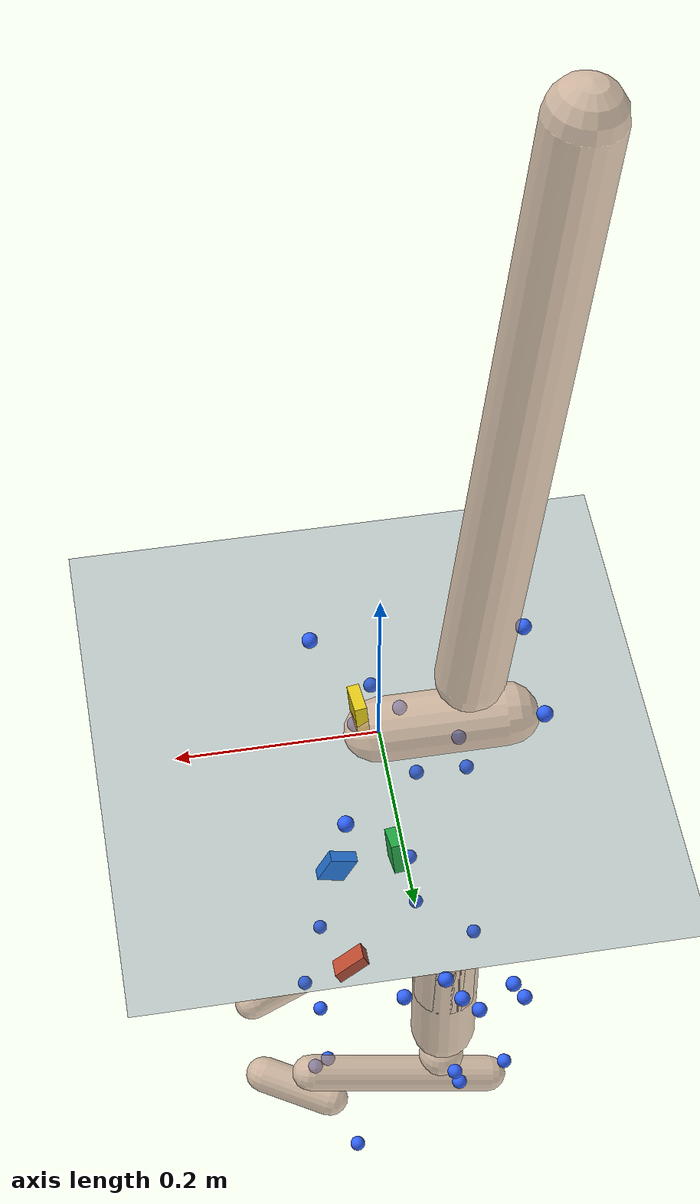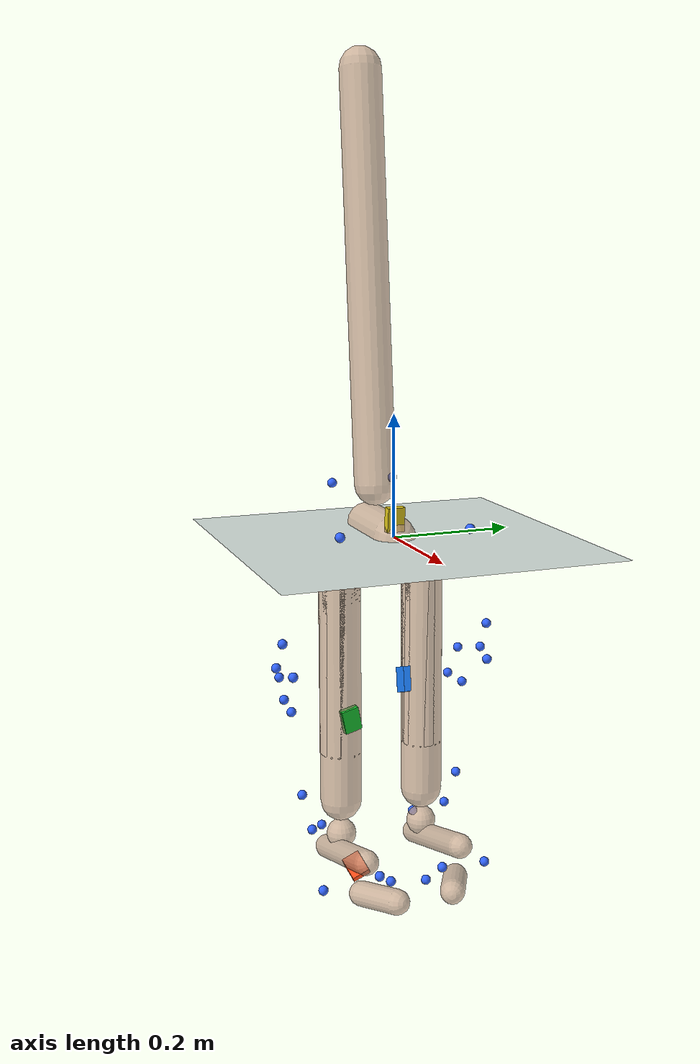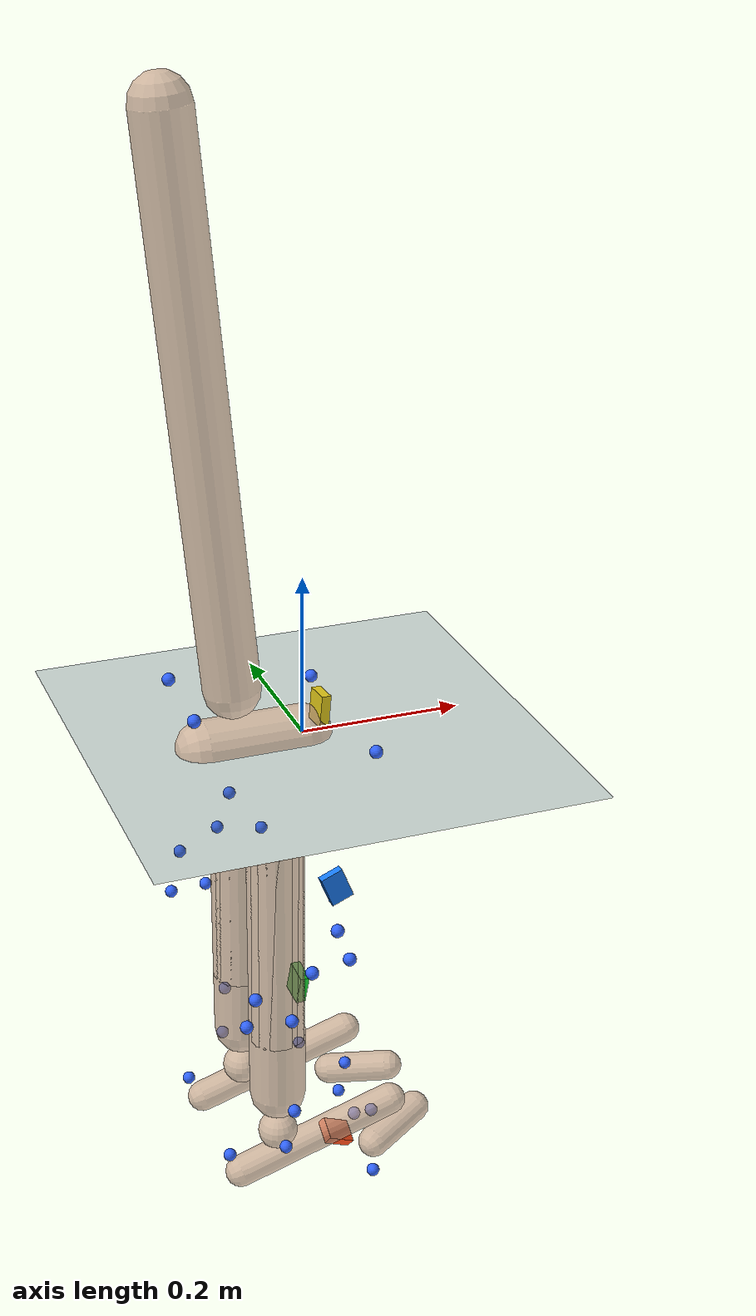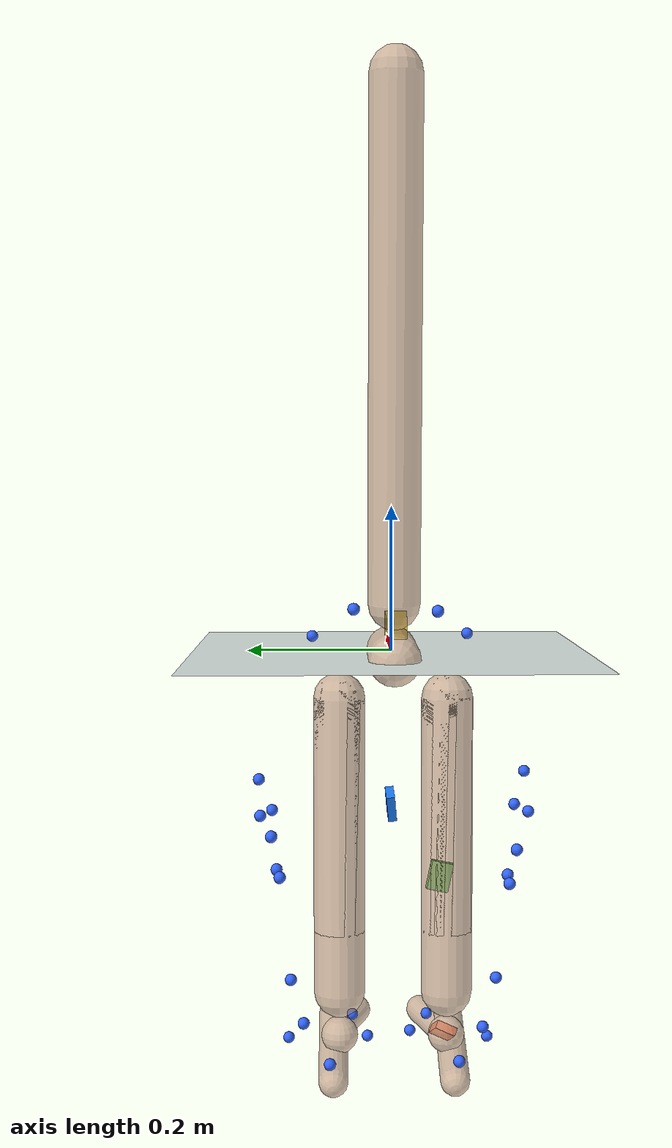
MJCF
<mujoco model="AB20">
  <compiler angle="radian" autolimits="true"/>
  <option timestep="0.005" gravity="0 0 -9.81"><flag contact="disable"/></option>
  <visual><global offwidth="1280" offheight="720"/></visual>
  <default><joint limited="false" damping="0"/><geom contype="0" conaffinity="0"/></default>
  <asset>
    <texture name="grid" type="2d" builtin="checker" rgb1="0.2 0.3 0.4" rgb2="0.3 0.4 0.5" width="512" height="512"/>
    <material name="grid" texture="grid" texrepeat="2 2" texuniform="true"/>
    <material name="skin" rgba="0.8 0.65 0.55 0.7"/>
  </asset>
  <worldbody>
    <light pos="0 0 4" dir="0 0 -1"/>
    <geom name="floor" type="plane" size="0 0 0.05" material="grid"/>
    <body name="pelvis" pos="0 0 0" quat="1 0 0 0">
      <joint name="pelvis_tx" type="slide" axis="1 0 0"/>
      <joint name="pelvis_ty" type="slide" axis="0 0 1"/>
      <joint name="pelvis_tz" type="slide" axis="0 -1 0"/>
      <joint name="pelvis_tilt" type="hinge" axis="0 -1 0"/>
      <joint name="pelvis_list" type="hinge" axis="1 0 0"/>
      <joint name="pelvis_rotation" type="hinge" axis="0 0 1"/>
      <inertial pos="-0.062069295 0 0" mass="10.7342" diaginertia="0.10734209 0.10734209 0.10734209"/>
      <geom type="capsule" fromto="0 0 0 -0.12413859 0 0" size="0.035" material="skin" mass="0"/>
      <site name="m_R_ASIS" pos="0.051108366 -0.10978101 0.018015081" size="0.008" rgba="0.2 0.4 1 1" group="2"/>
      <site name="m_L_ASIS" pos="0.050746581 0.11137873 0.01492082" size="0.008" rgba="0.2 0.4 1 1" group="2"/>
      <site name="m_L_PSIS" pos="-0.14970844 0.054369327 0.069853841" size="0.008" rgba="0.2 0.4 1 1" group="2"/>
      <site name="m_R_PSIS" pos="-0.15140817 -0.054568523 0.0671458" size="0.008" rgba="0.2 0.4 1 1" group="2"/>
      <body name="femur_r" pos="-0.062069295 -0.073306735 -0.058030841" quat="1 0 0 0">
        <joint name="hip_flexion_r" type="hinge" axis="0 -1 0"/>
        <joint name="hip_adduction_r" type="hinge" axis="1 0 0"/>
        <joint name="hip_rotation_r" type="hinge" axis="0 0 1"/>
        <inertial pos="0 0 -0.15976041" mass="8.47781" diaginertia="0.084778101 0.084778101 0.084778101"/>
        <geom type="capsule" fromto="0 0 0 0 0 -0.31952082" size="0.035" material="skin" mass="0"/>
        <site name="m_R_Thigh_Upper" pos="0.038305952 -0.1101171 -0.10849112" size="0.008" rgba="0.2 0.4 1 1" group="2"/>
        <site name="m_R_Thigh_Front" pos="0.058063562 -0.098980911 -0.15935557" size="0.008" rgba="0.2 0.4 1 1" group="2"/>
        <site name="m_R_Thigh_Rear" pos="0.0061621237 -0.11218336 -0.15828189" size="0.008" rgba="0.2 0.4 1 1" group="2"/>
        <site name="m_R_Knee_Lat" pos="-0.0013760862 -0.068321766 -0.38789228" size="0.008" rgba="0.2 0.4 1 1" group="2"/>
        <site name="imu_thigh" type="box" size="0.02 0.015 0.006" pos="0.10504702 0.072766358 -0.16855123" quat="0.41588795 0.38483018 -0.54996524 0.61358062" rgba="0.1 0.5 1 1" group="1"/>
        <body name="tibia_r" pos="0 0 0" quat="1 0 0 0">
          <joint name="knee_r_translation1" type="slide" axis="1 0 0"/>
          <joint name="knee_r_translation2" type="slide" axis="0 0 1"/>
          <joint name="knee_angle_r" type="hinge" axis="0 -1 0"/>
          <inertial pos="0 0 -0.20258409" mass="3.37922" diaginertia="0.033792204 0.033792204 0.033792204"/>
          <geom type="capsule" fromto="0 0 0 0 0 -0.40516817" size="0.035" material="skin" mass="0"/>
          <site name="m_R_Shank_Upper" pos="-0.056292605 -0.089393352 -0.19625522" size="0.008" rgba="0.2 0.4 1 1" group="2"/>
          <site name="m_R_Shank_Front" pos="-0.0089238407 -0.082856207 -0.24234959" size="0.008" rgba="0.2 0.4 1 1" group="2"/>
          <site name="m_R_Shank_Rear" pos="-0.064444327 -0.079157425 -0.23985187" size="0.008" rgba="0.2 0.4 1 1" group="2"/>
          <site name="m_R_Ankle_Lat" pos="-0.0064313623 -0.049930393 -0.45525184" size="0.008" rgba="0.2 0.4 1 1" group="2"/>
          <site name="imu_shank" type="box" size="0.02 0.015 0.006" pos="0.030948981 0.0075438387 -0.2539086" quat="0.6777861 0.043833637 0.72575359 0.10939076" rgba="0.1 0.8 0.2 1" group="1"/>
          <body name="talus_r" pos="0 0 -0.4665836" quat="1 0 0 0">
            <joint name="ankle_angle_r" type="hinge" axis="-0.10501355 -0.97912632 -0.17402245"/>
            <inertial pos="0 0 0" mass="0.0911455" diaginertia="0.00091145528 0.00091145528 0.00091145528"/>
            <geom type="sphere" size="0.025" material="skin" mass="0"/>
            <body name="calcn_r" pos="-0.052919261 -0.0085938188 -0.045519028" quat="1 0 0 0">
              <joint name="subtalar_angle_r" type="hinge" axis="0.78717961 0.12094949 0.60474746"/>
              <inertial pos="0.10111344 0 0.030334033" mass="1.13932" diaginertia="0.011393191 0.011393191 0.011393191"/>
              <geom type="capsule" fromto="0 0 0 0.20222688 0 0.060668065" size="0.02" material="skin" mass="0"/>
              <site name="m_R_Heel" pos="-0.015632192 -0.0043478364 0.033050618" size="0.008" rgba="0.2 0.4 1 1" group="2"/>
              <site name="m_R_Toe_Lat" pos="0.15727562 -0.058258582 0.0023123927" size="0.008" rgba="0.2 0.4 1 1" group="2"/>
              <site name="m_R_Toe_Med" pos="0.17409271 0.052769953 0.0054565079" size="0.008" rgba="0.2 0.4 1 1" group="2"/>
              <site name="m_R_Toe_Tip" pos="0.18813299 0.028012807 0.025688444" size="0.008" rgba="0.2 0.4 1 1" group="2"/>
              <site name="imu_foot" type="box" size="0.02 0.015 0.006" pos="0.13130844 0.0072109981 0.020777846" quat="0.94137328 0.20387449 0.26522315 0.043683253" rgba="1 0.3 0.1 1" group="1"/>
              <body name="toes_r" pos="0.18079083 -0.0010920252 -0.0020222688" quat="1 0 0 0">
                <joint name="mtp_angle_r" type="hinge" axis="-0.5809544 -0.81393611 0"/>
                <inertial pos="0.034985251 0.017694852 0.0060668065" mass="0.197421" diaginertia="0.0019742121 0.0019742121 0.0019742121"/>
                <geom type="capsule" fromto="0 0 0 0.069970502 0.035389705 0.012133613" size="0.02" material="skin" mass="0"/>
              </body>
            </body>
          </body>
        </body>
      </body>
      <body name="femur_l" pos="-0.062069295 0.073306735 -0.058030841" quat="1 0 0 0">
        <joint name="hip_flexion_l" type="hinge" axis="0 -1 0"/>
        <joint name="hip_adduction_l" type="hinge" axis="-1 0 0"/>
        <joint name="hip_rotation_l" type="hinge" axis="0 0 -1"/>
        <inertial pos="0 0 -0.15976041" mass="8.47781" diaginertia="0.084778101 0.084778101 0.084778101"/>
        <geom type="capsule" fromto="0 0 0 0 0 -0.31952082" size="0.035" material="skin" mass="0"/>
        <site name="m_L_Thigh_Upper" pos="0.024962017 0.11045665 -0.11602268" size="0.008" rgba="0.2 0.4 1 1" group="2"/>
        <site name="m_L_Thigh_Front" pos="0.062857813 0.094347682 -0.16711085" size="0.008" rgba="0.2 0.4 1 1" group="2"/>
        <site name="m_L_Thigh_Rear" pos="0.0063585596 0.10791949 -0.16262585" size="0.008" rgba="0.2 0.4 1 1" group="2"/>
        <site name="m_L_Knee_Lat" pos="-0.0010430354 0.066701353 -0.38891846" size="0.008" rgba="0.2 0.4 1 1" group="2"/>
        <body name="tibia_l" pos="0 0 0" quat="1 0 0 0">
          <joint name="knee_l_translation1" type="slide" axis="1 0 0"/>
          <joint name="knee_l_translation2" type="slide" axis="0 0 1"/>
          <joint name="knee_angle_l" type="hinge" axis="0 -1 0"/>
          <inertial pos="0 0 -0.20258409" mass="3.37922" diaginertia="0.033792204 0.033792204 0.033792204"/>
          <geom type="capsule" fromto="0 0 0 0 0 -0.40516817" size="0.035" material="skin" mass="0"/>
          <site name="m_L_Shank_Upper" pos="-0.050420089 0.090620389 -0.17817022" size="0.008" rgba="0.2 0.4 1 1" group="2"/>
          <site name="m_L_Shank_Front" pos="-0.01835341 0.084923145 -0.23079278" size="0.008" rgba="0.2 0.4 1 1" group="2"/>
          <site name="m_L_Shank_Rear" pos="-0.066996398 0.078858672 -0.22894228" size="0.008" rgba="0.2 0.4 1 1" group="2"/>
          <site name="m_L_Ankle_Lat" pos="-0.011115372 0.049066955 -0.44630866" size="0.008" rgba="0.2 0.4 1 1" group="2"/>
          <body name="talus_l" pos="0 0 -0.4665836" quat="1 0 0 0">
            <joint name="ankle_angle_l" type="hinge" axis="0.10501355 -0.97912632 0.17402245"/>
            <inertial pos="0 0 0" mass="0.0911455" diaginertia="0.00091145528 0.00091145528 0.00091145528"/>
            <geom type="sphere" size="0.025" material="skin" mass="0"/>
            <body name="calcn_l" pos="-0.052919261 0.0085938188 -0.045519028" quat="1 0 0 0">
              <joint name="subtalar_angle_l" type="hinge" axis="-0.78717961 0.12094949 -0.60474746"/>
              <inertial pos="0.10111344 0 0.030334033" mass="1.13932" diaginertia="0.011393191 0.011393191 0.011393191"/>
              <geom type="capsule" fromto="0 0 0 0.20222688 0 0.060668065" size="0.02" material="skin" mass="0"/>
              <site name="m_L_Heel" pos="-0.017304438 0.0043706617 0.031015955" size="0.008" rgba="0.2 0.4 1 1" group="2"/>
              <site name="m_L_Toe_Lat" pos="0.15959466 0.064771293 0.0022695198" size="0.008" rgba="0.2 0.4 1 1" group="2"/>
              <site name="m_L_Toe_Med" pos="0.17540969 -0.049233314 -0.0023812179" size="0.008" rgba="0.2 0.4 1 1" group="2"/>
              <site name="m_L_Toe_Tip" pos="0.192765 -0.027323785 0.023930693" size="0.008" rgba="0.2 0.4 1 1" group="2"/>
              <body name="toes_l" pos="0.18079083 0.0010920252 -0.0020222688" quat="1 0 0 0">
                <joint name="mtp_angle_l" type="hinge" axis="0.5809544 -0.81393611 0"/>
                <inertial pos="0.034985251 -0.017694852 0.0060668065" mass="0.197421" diaginertia="0.0019742121 0.0019742121 0.0019742121"/>
                <geom type="capsule" fromto="0 0 0 0.069970502 -0.035389705 0.012133613" size="0.02" material="skin" mass="0"/>
              </body>
            </body>
          </body>
        </body>
      </body>
      <body name="torso" pos="-0.088407045 0 0.071550885" quat="1 0 0 0">
        <joint name="lumbar_extension" type="hinge" axis="0 -1 0"/>
        <joint name="lumbar_bending" type="hinge" axis="1 0 0"/>
        <joint name="lumbar_rotation" type="hinge" axis="0 0 1"/>
        <inertial pos="-0.031733677 0 0.33849256" mass="31.2051" diaginertia="0.3120513 0.3120513 0.3120513"/>
        <geom type="capsule" fromto="0 0 0 -0.063467355 0 0.67698512" size="0.035" material="skin" mass="0"/>
        <site name="imu_trunk" type="box" size="0.02 0.015 0.006" pos="0.10773671 -0.0066579328 -0.038337301" quat="0.67530593 -0.038628337 0.73589671 0.030426499" rgba="0.9 0.8 0.1 1" group="1"/>
      </body>
    </body>
  </worldbody>
  <sensor>
<accelerometer name="imu_foot_acc" site="imu_foot"/>
<gyro name="imu_foot_gyr" site="imu_foot"/>
<accelerometer name="imu_shank_acc" site="imu_shank"/>
<gyro name="imu_shank_gyr" site="imu_shank"/>
<accelerometer name="imu_thigh_acc" site="imu_thigh"/>
<gyro name="imu_thigh_gyr" site="imu_thigh"/>
<accelerometer name="imu_trunk_acc" site="imu_trunk"/>
<gyro name="imu_trunk_gyr" site="imu_trunk"/>
</sensor>
</mujoco>
